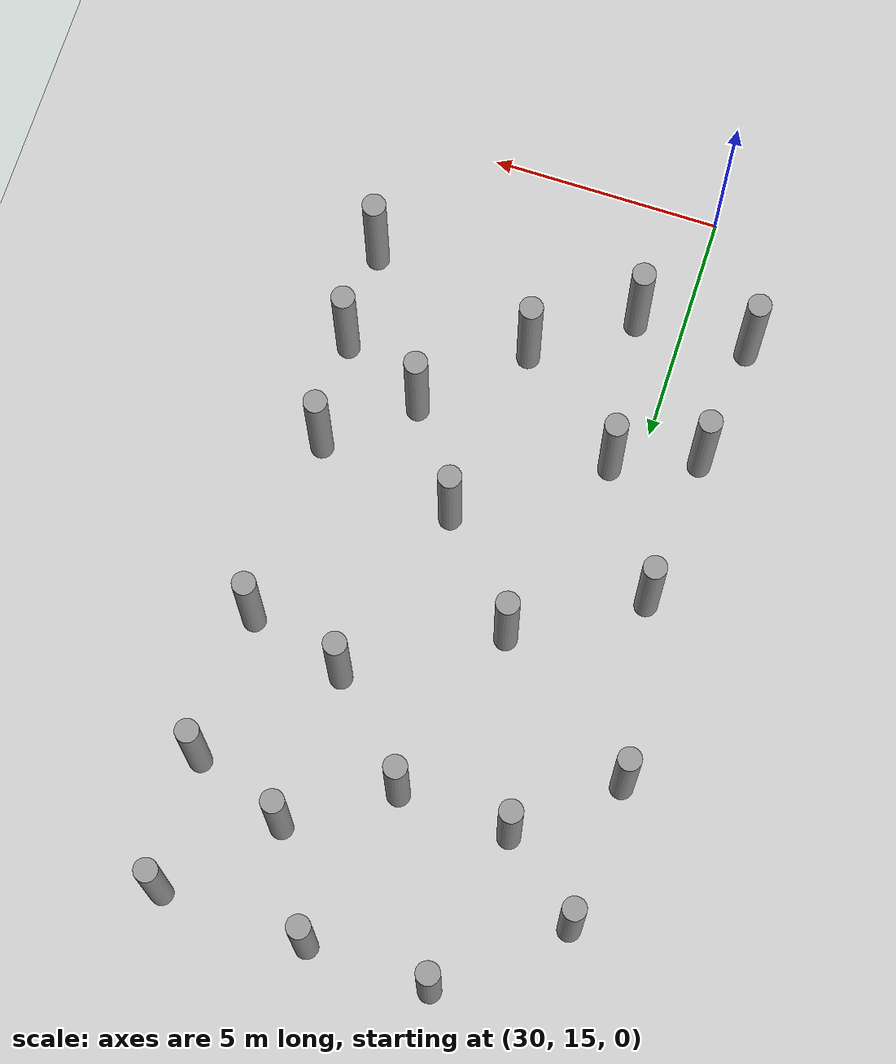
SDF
<sdf version="1.6">
 <world name="default">
  <model name="ground_plane">
   <static>1</static>
   <link name="link">
    <collision name="collision">
     <geometry><plane><normal>0 0 1</normal><size>100 100</size></plane></geometry>
     <surface><friction><ode><mu>100</mu><mu2>50</mu2></ode></friction></surface>
    </collision>
    <visual name="visual">
     <cast_shadows>0</cast_shadows>
     <geometry><plane><normal>0 0 1</normal><size>100 100</size></plane></geometry>
     <material>
      <script><uri>file://media/materials/scripts/gazebo.material</uri><name>Gazebo/Grey</name></script>
     </material>
    </visual>
   </link>
  </model>
  <model name="LjjForest_5">
   <link name="link_0_clone">
    <inertial>
     <mass>1</mass>
     <inertia><ixx>0.145833</ixx><ixy>0</ixy><ixz>0</ixz><iyy>0.145833</iyy><iyz>0</iyz><izz>0.125</izz></inertia>
    </inertial>
    <pose>-2.83119 0.981911 0 0 -0 0</pose>
    <visual name="visual">
     <geometry><cylinder><radius>0.25</radius><length>3</length></cylinder></geometry>
     <material>
      <lighting>1</lighting>
      <script><uri>file://media/materials/scripts/gazebo.material</uri><name>Gazebo/Grey</name></script>
      <shader type="vertex"><normal_map>__default__</normal_map></shader>
      <ambient>0.3 0.3 0.3 1</ambient>
      <diffuse>0.7 0.7 0.7 1</diffuse>
      <specular>0.01 0.01 0.01 1</specular>
      <emissive>0 0 0 1</emissive>
     </material>
    </visual>
    <collision name="collision">
     <geometry><cylinder><radius>0.25</radius><length>3</length></cylinder></geometry>
     <surface>
      <friction>
       <ode><mu>1</mu><mu2>1</mu2><fdir1>0 0 0</fdir1><slip1>0</slip1><slip2>0</slip2></ode>
       <torsional>
        <coefficient>1</coefficient>
        <patch_radius>0</patch_radius>
        <surface_radius>0</surface_radius>
        <use_patch_radius>1</use_patch_radius>
        <ode><slip>0</slip></ode>
       </torsional>
      </friction>
      <bounce><restitution_coefficient>0</restitution_coefficient><threshold>1e+06</threshold></bounce>
      <contact>
       <collide_without_contact>0</collide_without_contact>
       <collide_without_contact_bitmask>1</collide_without_contact_bitmask>
       <collide_bitmask>1</collide_bitmask>
       <ode>
        <soft_cfm>0</soft_cfm>
        <soft_erp>0.2</soft_erp>
        <kp>1e+13</kp>
        <kd>1</kd>
        <max_vel>0.01</max_vel>
        <min_depth>0</min_depth>
       </ode>
       <bullet>
        <split_impulse>1</split_impulse>
        <split_impulse_penetration_threshold>-0.01</split_impulse_penetration_threshold>
        <soft_cfm>0</soft_cfm>
        <soft_erp>0.2</soft_erp>
        <kp>1e+13</kp>
        <kd>1</kd>
       </bullet>
      </contact>
     </surface>
    </collision>
   </link>
   <link name="link_0_clone_0">
    <inertial>
     <mass>1</mass>
     <inertia><ixx>0.145833</ixx><ixy>0</ixy><ixz>0</ixz><iyy>0.145833</iyy><iyz>0</iyz><izz>0.125</izz></inertia>
    </inertial>
    <pose>-0.25253 2.5682 0 0 -0 0</pose>
    <visual name="visual">
     <geometry><cylinder><radius>0.25</radius><length>3</length></cylinder></geometry>
     <material>
      <lighting>1</lighting>
      <script><uri>file://media/materials/scripts/gazebo.material</uri><name>Gazebo/Grey</name></script>
      <shader type="vertex"><normal_map>__default__</normal_map></shader>
      <ambient>0.3 0.3 0.3 1</ambient>
      <diffuse>0.7 0.7 0.7 1</diffuse>
      <specular>0.01 0.01 0.01 1</specular>
      <emissive>0 0 0 1</emissive>
     </material>
    </visual>
    <collision name="collision">
     <geometry><cylinder><radius>0.25</radius><length>3</length></cylinder></geometry>
     <surface>
      <friction>
       <ode><mu>1</mu><mu2>1</mu2><fdir1>0 0 0</fdir1><slip1>0</slip1><slip2>0</slip2></ode>
       <torsional>
        <coefficient>1</coefficient>
        <patch_radius>0</patch_radius>
        <surface_radius>0</surface_radius>
        <use_patch_radius>1</use_patch_radius>
        <ode><slip>0</slip></ode>
       </torsional>
      </friction>
      <bounce><restitution_coefficient>0</restitution_coefficient><threshold>1e+06</threshold></bounce>
      <contact>
       <collide_without_contact>0</collide_without_contact>
       <collide_without_contact_bitmask>1</collide_without_contact_bitmask>
       <collide_bitmask>1</collide_bitmask>
       <ode>
        <soft_cfm>0</soft_cfm>
        <soft_erp>0.2</soft_erp>
        <kp>1e+13</kp>
        <kd>1</kd>
        <max_vel>0.01</max_vel>
        <min_depth>0</min_depth>
       </ode>
       <bullet>
        <split_impulse>1</split_impulse>
        <split_impulse_penetration_threshold>-0.01</split_impulse_penetration_threshold>
        <soft_cfm>0</soft_cfm>
        <soft_erp>0.2</soft_erp>
        <kp>1e+13</kp>
        <kd>1</kd>
       </bullet>
      </contact>
     </surface>
    </collision>
   </link>
   <link name="link_0_clone_1">
    <inertial>
     <mass>1</mass>
     <inertia><ixx>0.145833</ixx><ixy>0</ixy><ixz>0</ixz><iyy>0.145833</iyy><iyz>0</iyz><izz>0.125</izz></inertia>
    </inertial>
    <pose>-1.2394 -1.64814 0 0 -0 0</pose>
    <visual name="visual">
     <geometry><cylinder><radius>0.25</radius><length>3</length></cylinder></geometry>
     <material>
      <lighting>1</lighting>
      <script><uri>file://media/materials/scripts/gazebo.material</uri><name>Gazebo/Grey</name></script>
      <shader type="vertex"><normal_map>__default__</normal_map></shader>
      <ambient>0.3 0.3 0.3 1</ambient>
      <diffuse>0.7 0.7 0.7 1</diffuse>
      <specular>0.01 0.01 0.01 1</specular>
      <emissive>0 0 0 1</emissive>
     </material>
    </visual>
    <collision name="collision">
     <geometry><cylinder><radius>0.25</radius><length>3</length></cylinder></geometry>
     <surface>
      <friction>
       <ode><mu>1</mu><mu2>1</mu2><fdir1>0 0 0</fdir1><slip1>0</slip1><slip2>0</slip2></ode>
       <torsional>
        <coefficient>1</coefficient>
        <patch_radius>0</patch_radius>
        <surface_radius>0</surface_radius>
        <use_patch_radius>1</use_patch_radius>
        <ode><slip>0</slip></ode>
       </torsional>
      </friction>
      <bounce><restitution_coefficient>0</restitution_coefficient><threshold>1e+06</threshold></bounce>
      <contact>
       <collide_without_contact>0</collide_without_contact>
       <collide_without_contact_bitmask>1</collide_without_contact_bitmask>
       <collide_bitmask>1</collide_bitmask>
       <ode>
        <soft_cfm>0</soft_cfm>
        <soft_erp>0.2</soft_erp>
        <kp>1e+13</kp>
        <kd>1</kd>
        <max_vel>0.01</max_vel>
        <min_depth>0</min_depth>
       </ode>
       <bullet>
        <split_impulse>1</split_impulse>
        <split_impulse_penetration_threshold>-0.01</split_impulse_penetration_threshold>
        <soft_cfm>0</soft_cfm>
        <soft_erp>0.2</soft_erp>
        <kp>1e+13</kp>
        <kd>1</kd>
       </bullet>
      </contact>
     </surface>
    </collision>
   </link>
   <link name="link_0_clone_10">
    <inertial>
     <mass>1</mass>
     <inertia><ixx>0.145833</ixx><ixy>0</ixy><ixz>0</ixz><iyy>0.145833</iyy><iyz>0</iyz><izz>0.125</izz></inertia>
    </inertial>
    <pose>4.92442 -4.7051 0 0 -0 0</pose>
    <visual name="visual">
     <geometry><cylinder><radius>0.25</radius><length>3</length></cylinder></geometry>
     <material>
      <lighting>1</lighting>
      <script><uri>file://media/materials/scripts/gazebo.material</uri><name>Gazebo/Grey</name></script>
      <shader type="vertex"><normal_map>__default__</normal_map></shader>
      <ambient>0.3 0.3 0.3 1</ambient>
      <diffuse>0.7 0.7 0.7 1</diffuse>
      <specular>0.01 0.01 0.01 1</specular>
      <emissive>0 0 0 1</emissive>
     </material>
    </visual>
    <collision name="collision">
     <geometry><cylinder><radius>0.25</radius><length>3</length></cylinder></geometry>
     <surface>
      <friction>
       <ode><mu>1</mu><mu2>1</mu2><fdir1>0 0 0</fdir1><slip1>0</slip1><slip2>0</slip2></ode>
       <torsional>
        <coefficient>1</coefficient>
        <patch_radius>0</patch_radius>
        <surface_radius>0</surface_radius>
        <use_patch_radius>1</use_patch_radius>
        <ode><slip>0</slip></ode>
       </torsional>
      </friction>
      <bounce><restitution_coefficient>0</restitution_coefficient><threshold>1e+06</threshold></bounce>
      <contact>
       <collide_without_contact>0</collide_without_contact>
       <collide_without_contact_bitmask>1</collide_without_contact_bitmask>
       <collide_bitmask>1</collide_bitmask>
       <ode>
        <soft_cfm>0</soft_cfm>
        <soft_erp>0.2</soft_erp>
        <kp>1e+13</kp>
        <kd>1</kd>
        <max_vel>0.01</max_vel>
        <min_depth>0</min_depth>
       </ode>
       <bullet>
        <split_impulse>1</split_impulse>
        <split_impulse_penetration_threshold>-0.01</split_impulse_penetration_threshold>
        <soft_cfm>0</soft_cfm>
        <soft_erp>0.2</soft_erp>
        <kp>1e+13</kp>
        <kd>1</kd>
       </bullet>
      </contact>
     </surface>
    </collision>
   </link>
   <link name="link_0_clone_14">
    <inertial>
     <mass>1</mass>
     <inertia><ixx>0.145833</ixx><ixy>0</ixy><ixz>0</ixz><iyy>0.145833</iyy><iyz>0</iyz><izz>0.125</izz></inertia>
    </inertial>
    <pose>-0.840028 -4.93267 0 0 -0 0</pose>
    <visual name="visual">
     <geometry><cylinder><radius>0.25</radius><length>3</length></cylinder></geometry>
     <material>
      <lighting>1</lighting>
      <script><uri>file://media/materials/scripts/gazebo.material</uri><name>Gazebo/Grey</name></script>
      <shader type="vertex"><normal_map>__default__</normal_map></shader>
      <ambient>0.3 0.3 0.3 1</ambient>
      <diffuse>0.7 0.7 0.7 1</diffuse>
      <specular>0.01 0.01 0.01 1</specular>
      <emissive>0 0 0 1</emissive>
     </material>
    </visual>
    <collision name="collision">
     <geometry><cylinder><radius>0.25</radius><length>3</length></cylinder></geometry>
     <surface>
      <friction>
       <ode><mu>1</mu><mu2>1</mu2><fdir1>0 0 0</fdir1><slip1>0</slip1><slip2>0</slip2></ode>
       <torsional>
        <coefficient>1</coefficient>
        <patch_radius>0</patch_radius>
        <surface_radius>0</surface_radius>
        <use_patch_radius>1</use_patch_radius>
        <ode><slip>0</slip></ode>
       </torsional>
      </friction>
      <bounce><restitution_coefficient>0</restitution_coefficient><threshold>1e+06</threshold></bounce>
      <contact>
       <collide_without_contact>0</collide_without_contact>
       <collide_without_contact_bitmask>1</collide_without_contact_bitmask>
       <collide_bitmask>1</collide_bitmask>
       <ode>
        <soft_cfm>0</soft_cfm>
        <soft_erp>0.2</soft_erp>
        <kp>1e+13</kp>
        <kd>1</kd>
        <max_vel>0.01</max_vel>
        <min_depth>0</min_depth>
       </ode>
       <bullet>
        <split_impulse>1</split_impulse>
        <split_impulse_penetration_threshold>-0.01</split_impulse_penetration_threshold>
        <soft_cfm>0</soft_cfm>
        <soft_erp>0.2</soft_erp>
        <kp>1e+13</kp>
        <kd>1</kd>
       </bullet>
      </contact>
     </surface>
    </collision>
   </link>
   <link name="link_0_clone_15">
    <inertial>
     <mass>1</mass>
     <inertia><ixx>0.145833</ixx><ixy>0</ixy><ixz>0</ixz><iyy>0.145833</iyy><iyz>0</iyz><izz>0.125</izz></inertia>
    </inertial>
    <pose>-3.03254 -2.29236 0 0 -0 0</pose>
    <visual name="visual">
     <geometry><cylinder><radius>0.25</radius><length>3</length></cylinder></geometry>
     <material>
      <lighting>1</lighting>
      <script><uri>file://media/materials/scripts/gazebo.material</uri><name>Gazebo/Grey</name></script>
      <shader type="vertex"><normal_map>__default__</normal_map></shader>
      <ambient>0.3 0.3 0.3 1</ambient>
      <diffuse>0.7 0.7 0.7 1</diffuse>
      <specular>0.01 0.01 0.01 1</specular>
      <emissive>0 0 0 1</emissive>
     </material>
    </visual>
    <collision name="collision">
     <geometry><cylinder><radius>0.25</radius><length>3</length></cylinder></geometry>
     <surface>
      <friction>
       <ode><mu>1</mu><mu2>1</mu2><fdir1>0 0 0</fdir1><slip1>0</slip1><slip2>0</slip2></ode>
       <torsional>
        <coefficient>1</coefficient>
        <patch_radius>0</patch_radius>
        <surface_radius>0</surface_radius>
        <use_patch_radius>1</use_patch_radius>
        <ode><slip>0</slip></ode>
       </torsional>
      </friction>
      <bounce><restitution_coefficient>0</restitution_coefficient><threshold>1e+06</threshold></bounce>
      <contact>
       <collide_without_contact>0</collide_without_contact>
       <collide_without_contact_bitmask>1</collide_without_contact_bitmask>
       <collide_bitmask>1</collide_bitmask>
       <ode>
        <soft_cfm>0</soft_cfm>
        <soft_erp>0.2</soft_erp>
        <kp>1e+13</kp>
        <kd>1</kd>
        <max_vel>0.01</max_vel>
        <min_depth>0</min_depth>
       </ode>
       <bullet>
        <split_impulse>1</split_impulse>
        <split_impulse_penetration_threshold>-0.01</split_impulse_penetration_threshold>
        <soft_cfm>0</soft_cfm>
        <soft_erp>0.2</soft_erp>
        <kp>1e+13</kp>
        <kd>1</kd>
       </bullet>
      </contact>
     </surface>
    </collision>
   </link>
   <link name="link_0_clone_17">
    <inertial>
     <mass>1</mass>
     <inertia><ixx>0.145833</ixx><ixy>0</ixy><ixz>0</ixz><iyy>0.145833</iyy><iyz>0</iyz><izz>0.125</izz></inertia>
    </inertial>
    <pose>-3.28823 -4.99733 0 0 -0 0</pose>
    <visual name="visual">
     <geometry><cylinder><radius>0.25</radius><length>3</length></cylinder></geometry>
     <material>
      <lighting>1</lighting>
      <script><uri>file://media/materials/scripts/gazebo.material</uri><name>Gazebo/Grey</name></script>
      <shader type="vertex"><normal_map>__default__</normal_map></shader>
      <ambient>0.3 0.3 0.3 1</ambient>
      <diffuse>0.7 0.7 0.7 1</diffuse>
      <specular>0.01 0.01 0.01 1</specular>
      <emissive>0 0 0 1</emissive>
     </material>
    </visual>
    <collision name="collision">
     <geometry><cylinder><radius>0.25</radius><length>3</length></cylinder></geometry>
     <surface>
      <friction>
       <ode><mu>1</mu><mu2>1</mu2><fdir1>0 0 0</fdir1><slip1>0</slip1><slip2>0</slip2></ode>
       <torsional>
        <coefficient>1</coefficient>
        <patch_radius>0</patch_radius>
        <surface_radius>0</surface_radius>
        <use_patch_radius>1</use_patch_radius>
        <ode><slip>0</slip></ode>
       </torsional>
      </friction>
      <bounce><restitution_coefficient>0</restitution_coefficient><threshold>1e+06</threshold></bounce>
      <contact>
       <collide_without_contact>0</collide_without_contact>
       <collide_without_contact_bitmask>1</collide_without_contact_bitmask>
       <collide_bitmask>1</collide_bitmask>
       <ode>
        <soft_cfm>0</soft_cfm>
        <soft_erp>0.2</soft_erp>
        <kp>1e+13</kp>
        <kd>1</kd>
        <max_vel>0.01</max_vel>
        <min_depth>0</min_depth>
       </ode>
       <bullet>
        <split_impulse>1</split_impulse>
        <split_impulse_penetration_threshold>-0.01</split_impulse_penetration_threshold>
        <soft_cfm>0</soft_cfm>
        <soft_erp>0.2</soft_erp>
        <kp>1e+13</kp>
        <kd>1</kd>
       </bullet>
      </contact>
     </surface>
    </collision>
   </link>
   <link name="link_0_clone_2">
    <inertial>
     <mass>1</mass>
     <inertia><ixx>0.145833</ixx><ixy>0</ixy><ixz>0</ixz><iyy>0.145833</iyy><iyz>0</iyz><izz>0.125</izz></inertia>
    </inertial>
    <pose>1.64727 0.418921 0 0 -0 0</pose>
    <visual name="visual">
     <geometry><cylinder><radius>0.25</radius><length>3</length></cylinder></geometry>
     <material>
      <lighting>1</lighting>
      <script><uri>file://media/materials/scripts/gazebo.material</uri><name>Gazebo/Grey</name></script>
      <shader type="vertex"><normal_map>__default__</normal_map></shader>
      <ambient>0.3 0.3 0.3 1</ambient>
      <diffuse>0.7 0.7 0.7 1</diffuse>
      <specular>0.01 0.01 0.01 1</specular>
      <emissive>0 0 0 1</emissive>
     </material>
    </visual>
    <collision name="collision">
     <geometry><cylinder><radius>0.25</radius><length>3</length></cylinder></geometry>
     <surface>
      <friction>
       <ode><mu>1</mu><mu2>1</mu2><fdir1>0 0 0</fdir1><slip1>0</slip1><slip2>0</slip2></ode>
       <torsional>
        <coefficient>1</coefficient>
        <patch_radius>0</patch_radius>
        <surface_radius>0</surface_radius>
        <use_patch_radius>1</use_patch_radius>
        <ode><slip>0</slip></ode>
       </torsional>
      </friction>
      <bounce><restitution_coefficient>0</restitution_coefficient><threshold>1e+06</threshold></bounce>
      <contact>
       <collide_without_contact>0</collide_without_contact>
       <collide_without_contact_bitmask>1</collide_without_contact_bitmask>
       <collide_bitmask>1</collide_bitmask>
       <ode>
        <soft_cfm>0</soft_cfm>
        <soft_erp>0.2</soft_erp>
        <kp>1e+13</kp>
        <kd>1</kd>
        <max_vel>0.01</max_vel>
        <min_depth>0</min_depth>
       </ode>
       <bullet>
        <split_impulse>1</split_impulse>
        <split_impulse_penetration_threshold>-0.01</split_impulse_penetration_threshold>
        <soft_cfm>0</soft_cfm>
        <soft_erp>0.2</soft_erp>
        <kp>1e+13</kp>
        <kd>1</kd>
       </bullet>
      </contact>
     </surface>
    </collision>
   </link>
   <link name="link_0_clone_24">
    <inertial>
     <mass>1</mass>
     <inertia><ixx>0.145833</ixx><ixy>0</ixy><ixz>0</ixz><iyy>0.145833</iyy><iyz>0</iyz><izz>0.125</izz></inertia>
    </inertial>
    <pose>2.92874 7.75131 0 0 -0 0</pose>
    <visual name="visual">
     <geometry><cylinder><radius>0.25</radius><length>3</length></cylinder></geometry>
     <material>
      <lighting>1</lighting>
      <script><uri>file://media/materials/scripts/gazebo.material</uri><name>Gazebo/Grey</name></script>
      <shader type="vertex"><normal_map>__default__</normal_map></shader>
      <ambient>0.3 0.3 0.3 1</ambient>
      <diffuse>0.7 0.7 0.7 1</diffuse>
      <specular>0.01 0.01 0.01 1</specular>
      <emissive>0 0 0 1</emissive>
     </material>
    </visual>
    <collision name="collision">
     <geometry><cylinder><radius>0.25</radius><length>3</length></cylinder></geometry>
     <surface>
      <friction>
       <ode><mu>1</mu><mu2>1</mu2><fdir1>0 0 0</fdir1><slip1>0</slip1><slip2>0</slip2></ode>
       <torsional>
        <coefficient>1</coefficient>
        <patch_radius>0</patch_radius>
        <surface_radius>0</surface_radius>
        <use_patch_radius>1</use_patch_radius>
        <ode><slip>0</slip></ode>
       </torsional>
      </friction>
      <bounce><restitution_coefficient>0</restitution_coefficient><threshold>1e+06</threshold></bounce>
      <contact>
       <collide_without_contact>0</collide_without_contact>
       <collide_without_contact_bitmask>1</collide_without_contact_bitmask>
       <collide_bitmask>1</collide_bitmask>
       <ode>
        <soft_cfm>0</soft_cfm>
        <soft_erp>0.2</soft_erp>
        <kp>1e+13</kp>
        <kd>1</kd>
        <max_vel>0.01</max_vel>
        <min_depth>0</min_depth>
       </ode>
       <bullet>
        <split_impulse>1</split_impulse>
        <split_impulse_penetration_threshold>-0.01</split_impulse_penetration_threshold>
        <soft_cfm>0</soft_cfm>
        <soft_erp>0.2</soft_erp>
        <kp>1e+13</kp>
        <kd>1</kd>
       </bullet>
      </contact>
     </surface>
    </collision>
   </link>
   <link name="link_0_clone_25">
    <inertial>
     <mass>1</mass>
     <inertia><ixx>0.145833</ixx><ixy>0</ixy><ixz>0</ixz><iyy>0.145833</iyy><iyz>0</iyz><izz>0.125</izz></inertia>
    </inertial>
    <pose>4.82479 9.76951 0 0 -0 0</pose>
    <visual name="visual">
     <geometry><cylinder><radius>0.25</radius><length>3</length></cylinder></geometry>
     <material>
      <lighting>1</lighting>
      <script><uri>file://media/materials/scripts/gazebo.material</uri><name>Gazebo/Grey</name></script>
      <shader type="vertex"><normal_map>__default__</normal_map></shader>
      <ambient>0.3 0.3 0.3 1</ambient>
      <diffuse>0.7 0.7 0.7 1</diffuse>
      <specular>0.01 0.01 0.01 1</specular>
      <emissive>0 0 0 1</emissive>
     </material>
    </visual>
    <collision name="collision">
     <geometry><cylinder><radius>0.25</radius><length>3</length></cylinder></geometry>
     <surface>
      <friction>
       <ode><mu>1</mu><mu2>1</mu2><fdir1>0 0 0</fdir1><slip1>0</slip1><slip2>0</slip2></ode>
       <torsional>
        <coefficient>1</coefficient>
        <patch_radius>0</patch_radius>
        <surface_radius>0</surface_radius>
        <use_patch_radius>1</use_patch_radius>
        <ode><slip>0</slip></ode>
       </torsional>
      </friction>
      <bounce><restitution_coefficient>0</restitution_coefficient><threshold>1e+06</threshold></bounce>
      <contact>
       <collide_without_contact>0</collide_without_contact>
       <collide_without_contact_bitmask>1</collide_without_contact_bitmask>
       <collide_bitmask>1</collide_bitmask>
       <ode>
        <soft_cfm>0</soft_cfm>
        <soft_erp>0.2</soft_erp>
        <kp>1e+13</kp>
        <kd>1</kd>
        <max_vel>0.01</max_vel>
        <min_depth>0</min_depth>
       </ode>
       <bullet>
        <split_impulse>1</split_impulse>
        <split_impulse_penetration_threshold>-0.01</split_impulse_penetration_threshold>
        <soft_cfm>0</soft_cfm>
        <soft_erp>0.2</soft_erp>
        <kp>1e+13</kp>
        <kd>1</kd>
       </bullet>
      </contact>
     </surface>
    </collision>
   </link>
   <link name="link_0_clone_26">
    <inertial>
     <mass>1</mass>
     <inertia><ixx>0.145833</ixx><ixy>0</ixy><ixz>0</ixz><iyy>0.145833</iyy><iyz>0</iyz><izz>0.125</izz></inertia>
    </inertial>
    <pose>1.66794 9.91533 0 0 -0 0</pose>
    <visual name="visual">
     <geometry><cylinder><radius>0.25</radius><length>3</length></cylinder></geometry>
     <material>
      <lighting>1</lighting>
      <script><uri>file://media/materials/scripts/gazebo.material</uri><name>Gazebo/Grey</name></script>
      <shader type="vertex"><normal_map>__default__</normal_map></shader>
      <ambient>0.3 0.3 0.3 1</ambient>
      <diffuse>0.7 0.7 0.7 1</diffuse>
      <specular>0.01 0.01 0.01 1</specular>
      <emissive>0 0 0 1</emissive>
     </material>
    </visual>
    <collision name="collision">
     <geometry><cylinder><radius>0.25</radius><length>3</length></cylinder></geometry>
     <surface>
      <friction>
       <ode><mu>1</mu><mu2>1</mu2><fdir1>0 0 0</fdir1><slip1>0</slip1><slip2>0</slip2></ode>
       <torsional>
        <coefficient>1</coefficient>
        <patch_radius>0</patch_radius>
        <surface_radius>0</surface_radius>
        <use_patch_radius>1</use_patch_radius>
        <ode><slip>0</slip></ode>
       </torsional>
      </friction>
      <bounce><restitution_coefficient>0</restitution_coefficient><threshold>1e+06</threshold></bounce>
      <contact>
       <collide_without_contact>0</collide_without_contact>
       <collide_without_contact_bitmask>1</collide_without_contact_bitmask>
       <collide_bitmask>1</collide_bitmask>
       <ode>
        <soft_cfm>0</soft_cfm>
        <soft_erp>0.2</soft_erp>
        <kp>1e+13</kp>
        <kd>1</kd>
        <max_vel>0.01</max_vel>
        <min_depth>0</min_depth>
       </ode>
       <bullet>
        <split_impulse>1</split_impulse>
        <split_impulse_penetration_threshold>-0.01</split_impulse_penetration_threshold>
        <soft_cfm>0</soft_cfm>
        <soft_erp>0.2</soft_erp>
        <kp>1e+13</kp>
        <kd>1</kd>
       </bullet>
      </contact>
     </surface>
    </collision>
   </link>
   <link name="link_0_clone_27">
    <inertial>
     <mass>1</mass>
     <inertia><ixx>0.145833</ixx><ixy>0</ixy><ixz>0</ixz><iyy>0.145833</iyy><iyz>0</iyz><izz>0.125</izz></inertia>
    </inertial>
    <pose>-0.975859 10.0087 0 0 -0 0</pose>
    <visual name="visual">
     <geometry><cylinder><radius>0.25</radius><length>3</length></cylinder></geometry>
     <material>
      <lighting>1</lighting>
      <script><uri>file://media/materials/scripts/gazebo.material</uri><name>Gazebo/Grey</name></script>
      <shader type="vertex"><normal_map>__default__</normal_map></shader>
      <ambient>0.3 0.3 0.3 1</ambient>
      <diffuse>0.7 0.7 0.7 1</diffuse>
      <specular>0.01 0.01 0.01 1</specular>
      <emissive>0 0 0 1</emissive>
     </material>
    </visual>
    <collision name="collision">
     <geometry><cylinder><radius>0.25</radius><length>3</length></cylinder></geometry>
     <surface>
      <friction>
       <ode><mu>1</mu><mu2>1</mu2><fdir1>0 0 0</fdir1><slip1>0</slip1><slip2>0</slip2></ode>
       <torsional>
        <coefficient>1</coefficient>
        <patch_radius>0</patch_radius>
        <surface_radius>0</surface_radius>
        <use_patch_radius>1</use_patch_radius>
        <ode><slip>0</slip></ode>
       </torsional>
      </friction>
      <bounce><restitution_coefficient>0</restitution_coefficient><threshold>1e+06</threshold></bounce>
      <contact>
       <collide_without_contact>0</collide_without_contact>
       <collide_without_contact_bitmask>1</collide_without_contact_bitmask>
       <collide_bitmask>1</collide_bitmask>
       <ode>
        <soft_cfm>0</soft_cfm>
        <soft_erp>0.2</soft_erp>
        <kp>1e+13</kp>
        <kd>1</kd>
        <max_vel>0.01</max_vel>
        <min_depth>0</min_depth>
       </ode>
       <bullet>
        <split_impulse>1</split_impulse>
        <split_impulse_penetration_threshold>-0.01</split_impulse_penetration_threshold>
        <soft_cfm>0</soft_cfm>
        <soft_erp>0.2</soft_erp>
        <kp>1e+13</kp>
        <kd>1</kd>
       </bullet>
      </contact>
     </surface>
    </collision>
   </link>
   <link name="link_0_clone_28">
    <inertial>
     <mass>1</mass>
     <inertia><ixx>0.145833</ixx><ixy>0</ixy><ixz>0</ixz><iyy>0.145833</iyy><iyz>0</iyz><izz>0.125</izz></inertia>
    </inertial>
    <pose>-3.28832 7.97521 0 0 -0 0</pose>
    <visual name="visual">
     <geometry><cylinder><radius>0.25</radius><length>3</length></cylinder></geometry>
     <material>
      <lighting>1</lighting>
      <script><uri>file://media/materials/scripts/gazebo.material</uri><name>Gazebo/Grey</name></script>
      <shader type="vertex"><normal_map>__default__</normal_map></shader>
      <ambient>0.3 0.3 0.3 1</ambient>
      <diffuse>0.7 0.7 0.7 1</diffuse>
      <specular>0.01 0.01 0.01 1</specular>
      <emissive>0 0 0 1</emissive>
     </material>
    </visual>
    <collision name="collision">
     <geometry><cylinder><radius>0.25</radius><length>3</length></cylinder></geometry>
     <surface>
      <friction>
       <ode><mu>1</mu><mu2>1</mu2><fdir1>0 0 0</fdir1><slip1>0</slip1><slip2>0</slip2></ode>
       <torsional>
        <coefficient>1</coefficient>
        <patch_radius>0</patch_radius>
        <surface_radius>0</surface_radius>
        <use_patch_radius>1</use_patch_radius>
        <ode><slip>0</slip></ode>
       </torsional>
      </friction>
      <bounce><restitution_coefficient>0</restitution_coefficient><threshold>1e+06</threshold></bounce>
      <contact>
       <collide_without_contact>0</collide_without_contact>
       <collide_without_contact_bitmask>1</collide_without_contact_bitmask>
       <collide_bitmask>1</collide_bitmask>
       <ode>
        <soft_cfm>0</soft_cfm>
        <soft_erp>0.2</soft_erp>
        <kp>1e+13</kp>
        <kd>1</kd>
        <max_vel>0.01</max_vel>
        <min_depth>0</min_depth>
       </ode>
       <bullet>
        <split_impulse>1</split_impulse>
        <split_impulse_penetration_threshold>-0.01</split_impulse_penetration_threshold>
        <soft_cfm>0</soft_cfm>
        <soft_erp>0.2</soft_erp>
        <kp>1e+13</kp>
        <kd>1</kd>
       </bullet>
      </contact>
     </surface>
    </collision>
   </link>
   <link name="link_0_clone_3">
    <inertial>
     <mass>1</mass>
     <inertia><ixx>0.145833</ixx><ixy>0</ixy><ixz>0</ixz><iyy>0.145833</iyy><iyz>0</iyz><izz>0.125</izz></inertia>
    </inertial>
    <pose>2.76214 4.38882 0 0 -0 0</pose>
    <visual name="visual">
     <geometry><cylinder><radius>0.25</radius><length>3</length></cylinder></geometry>
     <material>
      <lighting>1</lighting>
      <script><uri>file://media/materials/scripts/gazebo.material</uri><name>Gazebo/Grey</name></script>
      <shader type="vertex"><normal_map>__default__</normal_map></shader>
      <ambient>0.3 0.3 0.3 1</ambient>
      <diffuse>0.7 0.7 0.7 1</diffuse>
      <specular>0.01 0.01 0.01 1</specular>
      <emissive>0 0 0 1</emissive>
     </material>
    </visual>
    <collision name="collision">
     <geometry><cylinder><radius>0.25</radius><length>3</length></cylinder></geometry>
     <surface>
      <friction>
       <ode><mu>1</mu><mu2>1</mu2><fdir1>0 0 0</fdir1><slip1>0</slip1><slip2>0</slip2></ode>
       <torsional>
        <coefficient>1</coefficient>
        <patch_radius>0</patch_radius>
        <surface_radius>0</surface_radius>
        <use_patch_radius>1</use_patch_radius>
        <ode><slip>0</slip></ode>
       </torsional>
      </friction>
      <bounce><restitution_coefficient>0</restitution_coefficient><threshold>1e+06</threshold></bounce>
      <contact>
       <collide_without_contact>0</collide_without_contact>
       <collide_without_contact_bitmask>1</collide_without_contact_bitmask>
       <collide_bitmask>1</collide_bitmask>
       <ode>
        <soft_cfm>0</soft_cfm>
        <soft_erp>0.2</soft_erp>
        <kp>1e+13</kp>
        <kd>1</kd>
        <max_vel>0.01</max_vel>
        <min_depth>0</min_depth>
       </ode>
       <bullet>
        <split_impulse>1</split_impulse>
        <split_impulse_penetration_threshold>-0.01</split_impulse_penetration_threshold>
        <soft_cfm>0</soft_cfm>
        <soft_erp>0.2</soft_erp>
        <kp>1e+13</kp>
        <kd>1</kd>
       </bullet>
      </contact>
     </surface>
    </collision>
   </link>
   <link name="link_0_clone_30">
    <inertial>
     <mass>1</mass>
     <inertia><ixx>0.145833</ixx><ixy>0</ixy><ixz>0</ixz><iyy>0.145833</iyy><iyz>0</iyz><izz>0.125</izz></inertia>
    </inertial>
    <pose>4.96935 6.93626 0 0 -0 0</pose>
    <visual name="visual">
     <geometry><cylinder><radius>0.25</radius><length>3</length></cylinder></geometry>
     <material>
      <lighting>1</lighting>
      <script><uri>file://media/materials/scripts/gazebo.material</uri><name>Gazebo/Grey</name></script>
      <shader type="vertex"><normal_map>__default__</normal_map></shader>
      <ambient>0.3 0.3 0.3 1</ambient>
      <diffuse>0.7 0.7 0.7 1</diffuse>
      <specular>0.01 0.01 0.01 1</specular>
      <emissive>0 0 0 1</emissive>
     </material>
    </visual>
    <collision name="collision">
     <geometry><cylinder><radius>0.25</radius><length>3</length></cylinder></geometry>
     <surface>
      <friction>
       <ode><mu>1</mu><mu2>1</mu2><fdir1>0 0 0</fdir1><slip1>0</slip1><slip2>0</slip2></ode>
       <torsional>
        <coefficient>1</coefficient>
        <patch_radius>0</patch_radius>
        <surface_radius>0</surface_radius>
        <use_patch_radius>1</use_patch_radius>
        <ode><slip>0</slip></ode>
       </torsional>
      </friction>
      <bounce><restitution_coefficient>0</restitution_coefficient><threshold>1e+06</threshold></bounce>
      <contact>
       <collide_without_contact>0</collide_without_contact>
       <collide_without_contact_bitmask>1</collide_without_contact_bitmask>
       <collide_bitmask>1</collide_bitmask>
       <ode>
        <soft_cfm>0</soft_cfm>
        <soft_erp>0.2</soft_erp>
        <kp>1e+13</kp>
        <kd>1</kd>
        <max_vel>0.01</max_vel>
        <min_depth>0</min_depth>
       </ode>
       <bullet>
        <split_impulse>1</split_impulse>
        <split_impulse_penetration_threshold>-0.01</split_impulse_penetration_threshold>
        <soft_cfm>0</soft_cfm>
        <soft_erp>0.2</soft_erp>
        <kp>1e+13</kp>
        <kd>1</kd>
       </bullet>
      </contact>
     </surface>
    </collision>
   </link>
   <link name="link_0_clone_31">
    <inertial>
     <mass>1</mass>
     <inertia><ixx>0.145833</ixx><ixy>0</ixy><ixz>0</ixz><iyy>0.145833</iyy><iyz>0</iyz><izz>0.125</izz></inertia>
    </inertial>
    <pose>4.87388 3.77106 0 0 -0 0</pose>
    <visual name="visual">
     <geometry><cylinder><radius>0.25</radius><length>3</length></cylinder></geometry>
     <material>
      <lighting>1</lighting>
      <script><uri>file://media/materials/scripts/gazebo.material</uri><name>Gazebo/Grey</name></script>
      <shader type="vertex"><normal_map>__default__</normal_map></shader>
      <ambient>0.3 0.3 0.3 1</ambient>
      <diffuse>0.7 0.7 0.7 1</diffuse>
      <specular>0.01 0.01 0.01 1</specular>
      <emissive>0 0 0 1</emissive>
     </material>
    </visual>
    <collision name="collision">
     <geometry><cylinder><radius>0.25</radius><length>3</length></cylinder></geometry>
     <surface>
      <friction>
       <ode><mu>1</mu><mu2>1</mu2><fdir1>0 0 0</fdir1><slip1>0</slip1><slip2>0</slip2></ode>
       <torsional>
        <coefficient>1</coefficient>
        <patch_radius>0</patch_radius>
        <surface_radius>0</surface_radius>
        <use_patch_radius>1</use_patch_radius>
        <ode><slip>0</slip></ode>
       </torsional>
      </friction>
      <bounce><restitution_coefficient>0</restitution_coefficient><threshold>1e+06</threshold></bounce>
      <contact>
       <collide_without_contact>0</collide_without_contact>
       <collide_without_contact_bitmask>1</collide_without_contact_bitmask>
       <collide_bitmask>1</collide_bitmask>
       <ode>
        <soft_cfm>0</soft_cfm>
        <soft_erp>0.2</soft_erp>
        <kp>1e+13</kp>
        <kd>1</kd>
        <max_vel>0.01</max_vel>
        <min_depth>0</min_depth>
       </ode>
       <bullet>
        <split_impulse>1</split_impulse>
        <split_impulse_penetration_threshold>-0.01</split_impulse_penetration_threshold>
        <soft_cfm>0</soft_cfm>
        <soft_erp>0.2</soft_erp>
        <kp>1e+13</kp>
        <kd>1</kd>
       </bullet>
      </contact>
     </surface>
    </collision>
   </link>
   <link name="link_0_clone_32">
    <inertial>
     <mass>1</mass>
     <inertia><ixx>0.145833</ixx><ixy>0</ixy><ixz>0</ixz><iyy>0.145833</iyy><iyz>0</iyz><izz>0.125</izz></inertia>
    </inertial>
    <pose>3.04344 -1.68403 0 0 -0 0</pose>
    <visual name="visual">
     <geometry><cylinder><radius>0.25</radius><length>3</length></cylinder></geometry>
     <material>
      <lighting>1</lighting>
      <script><uri>file://media/materials/scripts/gazebo.material</uri><name>Gazebo/Grey</name></script>
      <shader type="vertex"><normal_map>__default__</normal_map></shader>
      <ambient>0.3 0.3 0.3 1</ambient>
      <diffuse>0.7 0.7 0.7 1</diffuse>
      <specular>0.01 0.01 0.01 1</specular>
      <emissive>0 0 0 1</emissive>
     </material>
    </visual>
    <collision name="collision">
     <geometry><cylinder><radius>0.25</radius><length>3</length></cylinder></geometry>
     <surface>
      <friction>
       <ode><mu>1</mu><mu2>1</mu2><fdir1>0 0 0</fdir1><slip1>0</slip1><slip2>0</slip2></ode>
       <torsional>
        <coefficient>1</coefficient>
        <patch_radius>0</patch_radius>
        <surface_radius>0</surface_radius>
        <use_patch_radius>1</use_patch_radius>
        <ode><slip>0</slip></ode>
       </torsional>
      </friction>
      <bounce><restitution_coefficient>0</restitution_coefficient><threshold>1e+06</threshold></bounce>
      <contact>
       <collide_without_contact>0</collide_without_contact>
       <collide_without_contact_bitmask>1</collide_without_contact_bitmask>
       <collide_bitmask>1</collide_bitmask>
       <ode>
        <soft_cfm>0</soft_cfm>
        <soft_erp>0.2</soft_erp>
        <kp>1e+13</kp>
        <kd>1</kd>
        <max_vel>0.01</max_vel>
        <min_depth>0</min_depth>
       </ode>
       <bullet>
        <split_impulse>1</split_impulse>
        <split_impulse_penetration_threshold>-0.01</split_impulse_penetration_threshold>
        <soft_cfm>0</soft_cfm>
        <soft_erp>0.2</soft_erp>
        <kp>1e+13</kp>
        <kd>1</kd>
       </bullet>
      </contact>
     </surface>
    </collision>
   </link>
   <link name="link_0_clone_4">
    <inertial>
     <mass>1</mass>
     <inertia><ixx>0.145833</ixx><ixy>0</ixy><ixz>0</ixz><iyy>0.145833</iyy><iyz>0</iyz><izz>0.125</izz></inertia>
    </inertial>
    <pose>0.858928 6.3824 0 0 -0 0</pose>
    <visual name="visual">
     <geometry><cylinder><radius>0.25</radius><length>3</length></cylinder></geometry>
     <material>
      <lighting>1</lighting>
      <script><uri>file://media/materials/scripts/gazebo.material</uri><name>Gazebo/Grey</name></script>
      <shader type="vertex"><normal_map>__default__</normal_map></shader>
      <ambient>0.3 0.3 0.3 1</ambient>
      <diffuse>0.7 0.7 0.7 1</diffuse>
      <specular>0.01 0.01 0.01 1</specular>
      <emissive>0 0 0 1</emissive>
     </material>
    </visual>
    <collision name="collision">
     <geometry><cylinder><radius>0.25</radius><length>3</length></cylinder></geometry>
     <surface>
      <friction>
       <ode><mu>1</mu><mu2>1</mu2><fdir1>0 0 0</fdir1><slip1>0</slip1><slip2>0</slip2></ode>
       <torsional>
        <coefficient>1</coefficient>
        <patch_radius>0</patch_radius>
        <surface_radius>0</surface_radius>
        <use_patch_radius>1</use_patch_radius>
        <ode><slip>0</slip></ode>
       </torsional>
      </friction>
      <bounce><restitution_coefficient>0</restitution_coefficient><threshold>1e+06</threshold></bounce>
      <contact>
       <collide_without_contact>0</collide_without_contact>
       <collide_without_contact_bitmask>1</collide_without_contact_bitmask>
       <collide_bitmask>1</collide_bitmask>
       <ode>
        <soft_cfm>0</soft_cfm>
        <soft_erp>0.2</soft_erp>
        <kp>1e+13</kp>
        <kd>1</kd>
        <max_vel>0.01</max_vel>
        <min_depth>0</min_depth>
       </ode>
       <bullet>
        <split_impulse>1</split_impulse>
        <split_impulse_penetration_threshold>-0.01</split_impulse_penetration_threshold>
        <soft_cfm>0</soft_cfm>
        <soft_erp>0.2</soft_erp>
        <kp>1e+13</kp>
        <kd>1</kd>
       </bullet>
      </contact>
     </surface>
    </collision>
   </link>
   <link name="link_0_clone_5">
    <inertial>
     <mass>1</mass>
     <inertia><ixx>0.145833</ixx><ixy>0</ixy><ixz>0</ixz><iyy>0.145833</iyy><iyz>0</iyz><izz>0.125</izz></inertia>
    </inertial>
    <pose>-1.56065 6.53618 0 0 -0 0</pose>
    <visual name="visual">
     <geometry><cylinder><radius>0.25</radius><length>3</length></cylinder></geometry>
     <material>
      <lighting>1</lighting>
      <script><uri>file://media/materials/scripts/gazebo.material</uri><name>Gazebo/Grey</name></script>
      <shader type="vertex"><normal_map>__default__</normal_map></shader>
      <ambient>0.3 0.3 0.3 1</ambient>
      <diffuse>0.7 0.7 0.7 1</diffuse>
      <specular>0.01 0.01 0.01 1</specular>
      <emissive>0 0 0 1</emissive>
     </material>
    </visual>
    <collision name="collision">
     <geometry><cylinder><radius>0.25</radius><length>3</length></cylinder></geometry>
     <surface>
      <friction>
       <ode><mu>1</mu><mu2>1</mu2><fdir1>0 0 0</fdir1><slip1>0</slip1><slip2>0</slip2></ode>
       <torsional>
        <coefficient>1</coefficient>
        <patch_radius>0</patch_radius>
        <surface_radius>0</surface_radius>
        <use_patch_radius>1</use_patch_radius>
        <ode><slip>0</slip></ode>
       </torsional>
      </friction>
      <bounce><restitution_coefficient>0</restitution_coefficient><threshold>1e+06</threshold></bounce>
      <contact>
       <collide_without_contact>0</collide_without_contact>
       <collide_without_contact_bitmask>1</collide_without_contact_bitmask>
       <collide_bitmask>1</collide_bitmask>
       <ode>
        <soft_cfm>0</soft_cfm>
        <soft_erp>0.2</soft_erp>
        <kp>1e+13</kp>
        <kd>1</kd>
        <max_vel>0.01</max_vel>
        <min_depth>0</min_depth>
       </ode>
       <bullet>
        <split_impulse>1</split_impulse>
        <split_impulse_penetration_threshold>-0.01</split_impulse_penetration_threshold>
        <soft_cfm>0</soft_cfm>
        <soft_erp>0.2</soft_erp>
        <kp>1e+13</kp>
        <kd>1</kd>
       </bullet>
      </contact>
     </surface>
    </collision>
   </link>
   <link name="link_0_clone_6">
    <inertial>
     <mass>1</mass>
     <inertia><ixx>0.145833</ixx><ixy>0</ixy><ixz>0</ixz><iyy>0.145833</iyy><iyz>0</iyz><izz>0.125</izz></inertia>
    </inertial>
    <pose>-3.46215 4.85006 0 0 -0 0</pose>
    <visual name="visual">
     <geometry><cylinder><radius>0.25</radius><length>3</length></cylinder></geometry>
     <material>
      <lighting>1</lighting>
      <script><uri>file://media/materials/scripts/gazebo.material</uri><name>Gazebo/Grey</name></script>
      <shader type="vertex"><normal_map>__default__</normal_map></shader>
      <ambient>0.3 0.3 0.3 1</ambient>
      <diffuse>0.7 0.7 0.7 1</diffuse>
      <specular>0.01 0.01 0.01 1</specular>
      <emissive>0 0 0 1</emissive>
     </material>
    </visual>
    <collision name="collision">
     <geometry><cylinder><radius>0.25</radius><length>3</length></cylinder></geometry>
     <surface>
      <friction>
       <ode><mu>1</mu><mu2>1</mu2><fdir1>0 0 0</fdir1><slip1>0</slip1><slip2>0</slip2></ode>
       <torsional>
        <coefficient>1</coefficient>
        <patch_radius>0</patch_radius>
        <surface_radius>0</surface_radius>
        <use_patch_radius>1</use_patch_radius>
        <ode><slip>0</slip></ode>
       </torsional>
      </friction>
      <bounce><restitution_coefficient>0</restitution_coefficient><threshold>1e+06</threshold></bounce>
      <contact>
       <collide_without_contact>0</collide_without_contact>
       <collide_without_contact_bitmask>1</collide_without_contact_bitmask>
       <collide_bitmask>1</collide_bitmask>
       <ode>
        <soft_cfm>0</soft_cfm>
        <soft_erp>0.2</soft_erp>
        <kp>1e+13</kp>
        <kd>1</kd>
        <max_vel>0.01</max_vel>
        <min_depth>0</min_depth>
       </ode>
       <bullet>
        <split_impulse>1</split_impulse>
        <split_impulse_penetration_threshold>-0.01</split_impulse_penetration_threshold>
        <soft_cfm>0</soft_cfm>
        <soft_erp>0.2</soft_erp>
        <kp>1e+13</kp>
        <kd>1</kd>
       </bullet>
      </contact>
     </surface>
    </collision>
   </link>
   <link name="link_0_clone_7">
    <inertial>
     <mass>1</mass>
     <inertia><ixx>0.145833</ixx><ixy>0</ixy><ixz>0</ixz><iyy>0.145833</iyy><iyz>0</iyz><izz>0.125</izz></inertia>
    </inertial>
    <pose>1.14853 -3.52752 0 0 -0 0</pose>
    <visual name="visual">
     <geometry><cylinder><radius>0.25</radius><length>3</length></cylinder></geometry>
     <material>
      <lighting>1</lighting>
      <script><uri>file://media/materials/scripts/gazebo.material</uri><name>Gazebo/Grey</name></script>
      <shader type="vertex"><normal_map>__default__</normal_map></shader>
      <ambient>0.3 0.3 0.3 1</ambient>
      <diffuse>0.7 0.7 0.7 1</diffuse>
      <specular>0.01 0.01 0.01 1</specular>
      <emissive>0 0 0 1</emissive>
     </material>
    </visual>
    <collision name="collision">
     <geometry><cylinder><radius>0.25</radius><length>3</length></cylinder></geometry>
     <surface>
      <friction>
       <ode><mu>1</mu><mu2>1</mu2><fdir1>0 0 0</fdir1><slip1>0</slip1><slip2>0</slip2></ode>
       <torsional>
        <coefficient>1</coefficient>
        <patch_radius>0</patch_radius>
        <surface_radius>0</surface_radius>
        <use_patch_radius>1</use_patch_radius>
        <ode><slip>0</slip></ode>
       </torsional>
      </friction>
      <bounce><restitution_coefficient>0</restitution_coefficient><threshold>1e+06</threshold></bounce>
      <contact>
       <collide_without_contact>0</collide_without_contact>
       <collide_without_contact_bitmask>1</collide_without_contact_bitmask>
       <collide_bitmask>1</collide_bitmask>
       <ode>
        <soft_cfm>0</soft_cfm>
        <soft_erp>0.2</soft_erp>
        <kp>1e+13</kp>
        <kd>1</kd>
        <max_vel>0.01</max_vel>
        <min_depth>0</min_depth>
       </ode>
       <bullet>
        <split_impulse>1</split_impulse>
        <split_impulse_penetration_threshold>-0.01</split_impulse_penetration_threshold>
        <soft_cfm>0</soft_cfm>
        <soft_erp>0.2</soft_erp>
        <kp>1e+13</kp>
        <kd>1</kd>
       </bullet>
      </contact>
     </surface>
    </collision>
   </link>
   <link name="link_0_clone_8">
    <inertial>
     <mass>1</mass>
     <inertia><ixx>0.145833</ixx><ixy>0</ixy><ixz>0</ixz><iyy>0.145833</iyy><iyz>0</iyz><izz>0.125</izz></inertia>
    </inertial>
    <pose>4.72743 -0.273206 0 0 -0 0</pose>
    <visual name="visual">
     <geometry><cylinder><radius>0.25</radius><length>3</length></cylinder></geometry>
     <material>
      <lighting>1</lighting>
      <script><uri>file://media/materials/scripts/gazebo.material</uri><name>Gazebo/Grey</name></script>
      <shader type="vertex"><normal_map>__default__</normal_map></shader>
      <ambient>0.3 0.3 0.3 1</ambient>
      <diffuse>0.7 0.7 0.7 1</diffuse>
      <specular>0.01 0.01 0.01 1</specular>
      <emissive>0 0 0 1</emissive>
     </material>
    </visual>
    <collision name="collision">
     <geometry><cylinder><radius>0.25</radius><length>3</length></cylinder></geometry>
     <surface>
      <friction>
       <ode><mu>1</mu><mu2>1</mu2><fdir1>0 0 0</fdir1><slip1>0</slip1><slip2>0</slip2></ode>
       <torsional>
        <coefficient>1</coefficient>
        <patch_radius>0</patch_radius>
        <surface_radius>0</surface_radius>
        <use_patch_radius>1</use_patch_radius>
        <ode><slip>0</slip></ode>
       </torsional>
      </friction>
      <bounce><restitution_coefficient>0</restitution_coefficient><threshold>1e+06</threshold></bounce>
      <contact>
       <collide_without_contact>0</collide_without_contact>
       <collide_without_contact_bitmask>1</collide_without_contact_bitmask>
       <collide_bitmask>1</collide_bitmask>
       <ode>
        <soft_cfm>0</soft_cfm>
        <soft_erp>0.2</soft_erp>
        <kp>1e+13</kp>
        <kd>1</kd>
        <max_vel>0.01</max_vel>
        <min_depth>0</min_depth>
       </ode>
       <bullet>
        <split_impulse>1</split_impulse>
        <split_impulse_penetration_threshold>-0.01</split_impulse_penetration_threshold>
        <soft_cfm>0</soft_cfm>
        <soft_erp>0.2</soft_erp>
        <kp>1e+13</kp>
        <kd>1</kd>
       </bullet>
      </contact>
     </surface>
    </collision>
   </link>
   <link name="link_0_clone_9">
    <inertial>
     <mass>1</mass>
     <inertia><ixx>0.145833</ixx><ixy>0</ixy><ixz>0</ixz><iyy>0.145833</iyy><iyz>0</iyz><izz>0.125</izz></inertia>
    </inertial>
    <pose>4.89769 -2.58143 0 0 -0 0</pose>
    <visual name="visual">
     <geometry><cylinder><radius>0.25</radius><length>3</length></cylinder></geometry>
     <material>
      <lighting>1</lighting>
      <script><uri>file://media/materials/scripts/gazebo.material</uri><name>Gazebo/Grey</name></script>
      <shader type="vertex"><normal_map>__default__</normal_map></shader>
      <ambient>0.3 0.3 0.3 1</ambient>
      <diffuse>0.7 0.7 0.7 1</diffuse>
      <specular>0.01 0.01 0.01 1</specular>
      <emissive>0 0 0 1</emissive>
     </material>
    </visual>
    <collision name="collision">
     <geometry><cylinder><radius>0.25</radius><length>3</length></cylinder></geometry>
     <surface>
      <friction>
       <ode><mu>1</mu><mu2>1</mu2><fdir1>0 0 0</fdir1><slip1>0</slip1><slip2>0</slip2></ode>
       <torsional>
        <coefficient>1</coefficient>
        <patch_radius>0</patch_radius>
        <surface_radius>0</surface_radius>
        <use_patch_radius>1</use_patch_radius>
        <ode><slip>0</slip></ode>
       </torsional>
      </friction>
      <bounce><restitution_coefficient>0</restitution_coefficient><threshold>1e+06</threshold></bounce>
      <contact>
       <collide_without_contact>0</collide_without_contact>
       <collide_without_contact_bitmask>1</collide_without_contact_bitmask>
       <collide_bitmask>1</collide_bitmask>
       <ode>
        <soft_cfm>0</soft_cfm>
        <soft_erp>0.2</soft_erp>
        <kp>1e+13</kp>
        <kd>1</kd>
        <max_vel>0.01</max_vel>
        <min_depth>0</min_depth>
       </ode>
       <bullet>
        <split_impulse>1</split_impulse>
        <split_impulse_penetration_threshold>-0.01</split_impulse_penetration_threshold>
        <soft_cfm>0</soft_cfm>
        <soft_erp>0.2</soft_erp>
        <kp>1e+13</kp>
        <kd>1</kd>
       </bullet>
      </contact>
     </surface>
    </collision>
   </link>
   <static>0</static>
   <pose>31.8329 22.65 1.49999 0 -0 0.00223</pose>
  </model>
 </world>
</sdf>
